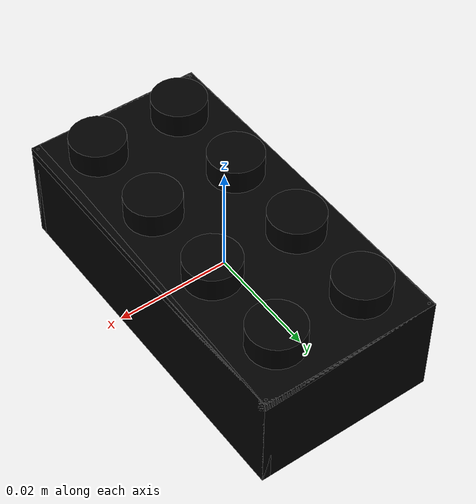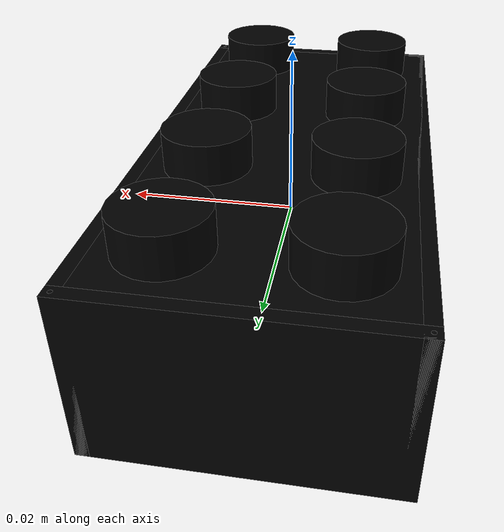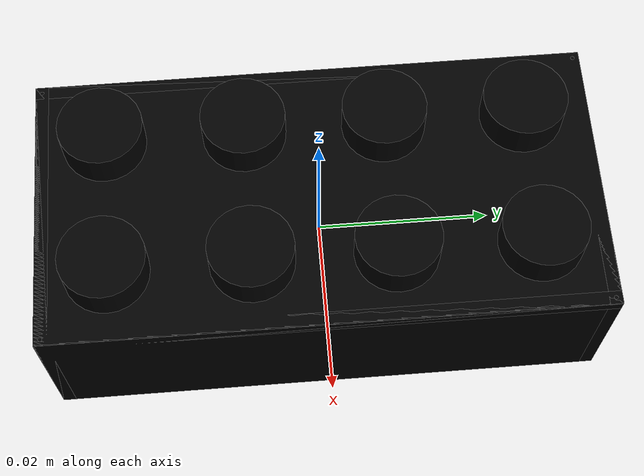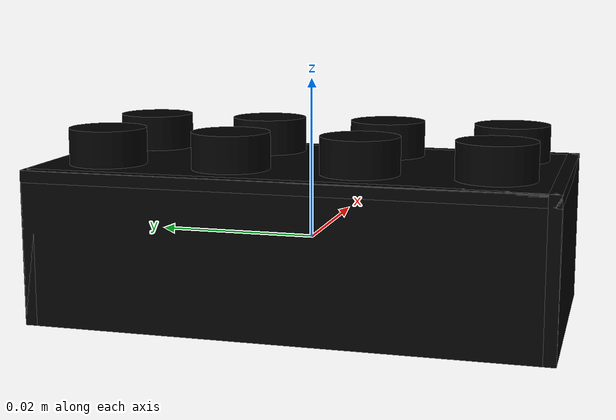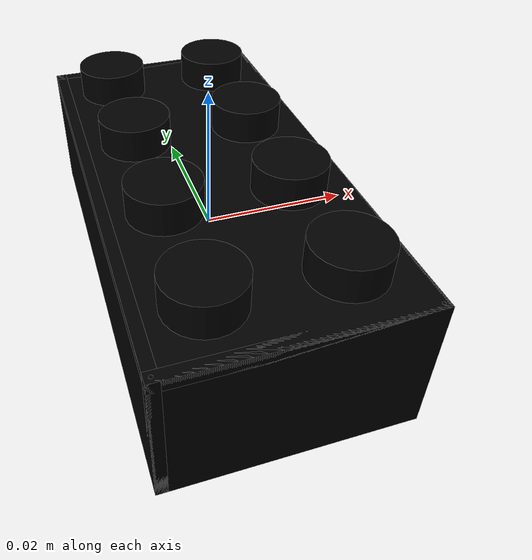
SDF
<?xml version="1.0"?>
<sdf version="1.7">
  <model name="block">
    <link name="block">

      <visual name="left_visual">
        <pose>0.0 0.03125 0.0 0 0 0</pose>
        <geometry>
          <box>
            <size>0.032 0.0015 0.0192</size>
          </box>
        </geometry>
        <material>
          <diffuse>0.0 0.0 0.0 1.0</diffuse>
        </material>
      </visual>
      <collision name="left_collision">
        <pose>0.0 0.03125 0.0 0 0 0</pose>
        <geometry>
          <box>
            <size>0.032 0.0015 0.0192</size>
          </box>
        </geometry>
          <drake:proximity_properties>
              <drake:rigid_hydroelastic/>
              <drake:mesh_resolution_hint>0.5</drake:mesh_resolution_hint>
          </drake:proximity_properties>
      </collision>

      <visual name="right_visual">
        <pose>0.0 -0.03125 0.0 0 0 0</pose>
        <geometry>
          <box>
            <size>0.032 0.0015 0.0192</size>
          </box>
        </geometry>
        <material>
          <diffuse>0.0 0.0 0.0 1.0</diffuse>
        </material>
      </visual>
      <collision name="right_collision">
        <pose>0.0 -0.03125 0.0 0 0 0</pose>
        <geometry>
          <box>
            <size>0.032 0.0015 0.0192</size>
          </box>
        </geometry>
          <drake:proximity_properties>
              <drake:rigid_hydroelastic/>
              <drake:mesh_resolution_hint>0.5</drake:mesh_resolution_hint>
          </drake:proximity_properties>
      </collision>

      <visual name="front_visual">
        <pose>0.01525 0.0 0.0 0 0 0</pose>
        <geometry>
          <box>
            <size>0.0015 0.064 0.0192</size>
          </box>
        </geometry>
        <material>
          <diffuse>0.0 0.0 0.0 1.0</diffuse>
        </material>
      </visual>
      <collision name="front_collision">
        <pose>0.01525 0.0 0.0 0 0 0</pose>
        <geometry>
          <box>
            <size>0.0015 0.064 0.0192</size>
          </box>
        </geometry>
          <drake:proximity_properties>
              <drake:rigid_hydroelastic/>
              <drake:mesh_resolution_hint>0.5</drake:mesh_resolution_hint>
          </drake:proximity_properties>
      </collision>

      <visual name="back_visual">
        <pose>-0.01525 0.0 0.0 0 0 0</pose>
        <geometry>
          <box>
            <size>0.0015 0.064 0.0192</size>
          </box>
        </geometry>
        <material>
          <diffuse>0.0 0.0 0.0 1.0</diffuse>
        </material>
      </visual>
      <collision name="back_collision">
        <pose>-0.01525 0.0 0.0 0 0 0</pose>
        <geometry>
          <box>
            <size>0.0015 0.064 0.0192</size>
          </box>
        </geometry>
          <drake:proximity_properties>
              <drake:rigid_hydroelastic/>
              <drake:mesh_resolution_hint>0.5</drake:mesh_resolution_hint>
          </drake:proximity_properties>
      </collision>

      <visual name="top_visual">
        <pose>0.0 0.0 0.008849999999999998 0 0 0</pose>
        <geometry>
          <box>
            <size>0.032 0.064 0.0015</size>
          </box>
        </geometry>
        <material>
          <diffuse>0.0 0.0 0.0 1.0</diffuse>
        </material>
      </visual>
      <collision name="top_collision">
        <pose>0.0 0.0 0.008849999999999998 0 0 0</pose>
        <geometry>
          <box>
            <size>0.032 0.064 0.0015</size>
          </box>
        </geometry>
          <drake:proximity_properties>
              <drake:rigid_hydroelastic/>
              <drake:mesh_resolution_hint>0.5</drake:mesh_resolution_hint>
          </drake:proximity_properties>
      </collision>

      <visual name="stud_1_1_visual">
        <pose>-0.008 -0.024 0.01185 0 0 0</pose>
        <geometry>
          <cylinder>
            <radius>0.0048</radius>
            <length>0.0045</length>
          </cylinder>
        </geometry>
        <material>
          <diffuse>0.0 0.0 0.0 1.0</diffuse>
        </material>
      </visual>
      <collision name="stud_1_1_collision">
        <pose>-0.008 -0.024 0.01185 0 0 0</pose>
        <geometry>
          <cylinder>
            <radius>0.0048</radius>
            <length>0.0045</length>
          </cylinder>
        </geometry>
          <drake:proximity_properties>
              <drake:rigid_hydroelastic/>
              <drake:mesh_resolution_hint>0.5</drake:mesh_resolution_hint>
          </drake:proximity_properties>
      </collision>

      <visual name="stud_1_2_visual">
        <pose>-0.008 -0.008 0.01185 0 0 0</pose>
        <geometry>
          <cylinder>
            <radius>0.0048</radius>
            <length>0.0045</length>
          </cylinder>
        </geometry>
        <material>
          <diffuse>0.0 0.0 0.0 1.0</diffuse>
        </material>
      </visual>
      <collision name="stud_1_2_collision">
        <pose>-0.008 -0.008 0.01185 0 0 0</pose>
        <geometry>
          <cylinder>
            <radius>0.0048</radius>
            <length>0.0045</length>
          </cylinder>
        </geometry>
          <drake:proximity_properties>
              <drake:rigid_hydroelastic/>
              <drake:mesh_resolution_hint>0.5</drake:mesh_resolution_hint>
          </drake:proximity_properties>
      </collision>

      <visual name="stud_1_3_visual">
        <pose>-0.008 0.008 0.01185 0 0 0</pose>
        <geometry>
          <cylinder>
            <radius>0.0048</radius>
            <length>0.0045</length>
          </cylinder>
        </geometry>
        <material>
          <diffuse>0.0 0.0 0.0 1.0</diffuse>
        </material>
      </visual>
      <collision name="stud_1_3_collision">
        <pose>-0.008 0.008 0.01185 0 0 0</pose>
        <geometry>
          <cylinder>
            <radius>0.0048</radius>
            <length>0.0045</length>
          </cylinder>
        </geometry>
          <drake:proximity_properties>
              <drake:rigid_hydroelastic/>
              <drake:mesh_resolution_hint>0.5</drake:mesh_resolution_hint>
          </drake:proximity_properties>
      </collision>

      <visual name="stud_1_4_visual">
        <pose>-0.008 0.024 0.01185 0 0 0</pose>
        <geometry>
          <cylinder>
            <radius>0.0048</radius>
            <length>0.0045</length>
          </cylinder>
        </geometry>
        <material>
          <diffuse>0.0 0.0 0.0 1.0</diffuse>
        </material>
      </visual>
      <collision name="stud_1_4_collision">
        <pose>-0.008 0.024 0.01185 0 0 0</pose>
        <geometry>
          <cylinder>
            <radius>0.0048</radius>
            <length>0.0045</length>
          </cylinder>
        </geometry>
          <drake:proximity_properties>
              <drake:rigid_hydroelastic/>
              <drake:mesh_resolution_hint>0.5</drake:mesh_resolution_hint>
          </drake:proximity_properties>
      </collision>

      <visual name="stud_2_1_visual">
        <pose>0.008 -0.024 0.01185 0 0 0</pose>
        <geometry>
          <cylinder>
            <radius>0.0048</radius>
            <length>0.0045</length>
          </cylinder>
        </geometry>
        <material>
          <diffuse>0.0 0.0 0.0 1.0</diffuse>
        </material>
      </visual>
      <collision name="stud_2_1_collision">
        <pose>0.008 -0.024 0.01185 0 0 0</pose>
        <geometry>
          <cylinder>
            <radius>0.0048</radius>
            <length>0.0045</length>
          </cylinder>
        </geometry>
          <drake:proximity_properties>
              <drake:rigid_hydroelastic/>
              <drake:mesh_resolution_hint>0.5</drake:mesh_resolution_hint>
          </drake:proximity_properties>
      </collision>

      <visual name="stud_2_2_visual">
        <pose>0.008 -0.008 0.01185 0 0 0</pose>
        <geometry>
          <cylinder>
            <radius>0.0048</radius>
            <length>0.0045</length>
          </cylinder>
        </geometry>
        <material>
          <diffuse>0.0 0.0 0.0 1.0</diffuse>
        </material>
      </visual>
      <collision name="stud_2_2_collision">
        <pose>0.008 -0.008 0.01185 0 0 0</pose>
        <geometry>
          <cylinder>
            <radius>0.0048</radius>
            <length>0.0045</length>
          </cylinder>
        </geometry>
          <drake:proximity_properties>
              <drake:rigid_hydroelastic/>
              <drake:mesh_resolution_hint>0.5</drake:mesh_resolution_hint>
          </drake:proximity_properties>
      </collision>

      <visual name="stud_2_3_visual">
        <pose>0.008 0.008 0.01185 0 0 0</pose>
        <geometry>
          <cylinder>
            <radius>0.0048</radius>
            <length>0.0045</length>
          </cylinder>
        </geometry>
        <material>
          <diffuse>0.0 0.0 0.0 1.0</diffuse>
        </material>
      </visual>
      <collision name="stud_2_3_collision">
        <pose>0.008 0.008 0.01185 0 0 0</pose>
        <geometry>
          <cylinder>
            <radius>0.0048</radius>
            <length>0.0045</length>
          </cylinder>
        </geometry>
          <drake:proximity_properties>
              <drake:rigid_hydroelastic/>
              <drake:mesh_resolution_hint>0.5</drake:mesh_resolution_hint>
          </drake:proximity_properties>
      </collision>

      <visual name="stud_2_4_visual">
        <pose>0.008 0.024 0.01185 0 0 0</pose>
        <geometry>
          <cylinder>
            <radius>0.0048</radius>
            <length>0.0045</length>
          </cylinder>
        </geometry>
        <material>
          <diffuse>0.0 0.0 0.0 1.0</diffuse>
        </material>
      </visual>
      <collision name="stud_2_4_collision">
        <pose>0.008 0.024 0.01185 0 0 0</pose>
        <geometry>
          <cylinder>
            <radius>0.0048</radius>
            <length>0.0045</length>
          </cylinder>
        </geometry>
          <drake:proximity_properties>
              <drake:rigid_hydroelastic/>
              <drake:mesh_resolution_hint>0.5</drake:mesh_resolution_hint>
          </drake:proximity_properties>
      </collision>

      <visual name="tube_1_1_visual">
        <pose>0.0 -0.016 0.0 0 0 0</pose>
        <geometry>
          <cylinder>
            <radius>0.006625</radius>
            <length>0.0167</length>
          </cylinder>
        </geometry>
        <material>
          <diffuse>0.0 0.0 0.0 1.0</diffuse>
        </material>
      </visual>
      <collision name="tube_1_1_collision">
        <pose>0.0 -0.016 0.0 0 0 0</pose>
        <geometry>
          <cylinder>
            <radius>0.006625</radius>
            <length>0.0167</length>
          </cylinder>
        </geometry>
          <drake:proximity_properties>
              <drake:rigid_hydroelastic/>
              <drake:mesh_resolution_hint>0.5</drake:mesh_resolution_hint>
          </drake:proximity_properties>
      </collision>

      <visual name="tube_1_1_sphere_1_visual">
        <pose>0.004578516408182896 -0.011421483591817105 -0.00805 0 0 0</pose>
        <geometry>
          <sphere>
            <radius>0.00030000000000000003</radius>
          </sphere>
        </geometry>
        <material>
          <diffuse>0.0 0.0 0.0 1.0</diffuse>
        </material>
      </visual>
      <collision name="tube_1_1_sphere_1_collision">
        <pose>0.004578516408182896 -0.011421483591817105 -0.00805 0 0 0</pose>
        <geometry>
          <sphere>
            <radius>0.00030000000000000003</radius>
          </sphere>
        </geometry>
      </collision>

      <visual name="tube_1_1_sphere_2_visual">
        <pose>-0.004578516408182895 -0.011421483591817105 -0.00805 0 0 0</pose>
        <geometry>
          <sphere>
            <radius>0.00030000000000000003</radius>
          </sphere>
        </geometry>
        <material>
          <diffuse>0.0 0.0 0.0 1.0</diffuse>
        </material>
      </visual>
      <collision name="tube_1_1_sphere_2_collision">
        <pose>-0.004578516408182895 -0.011421483591817105 -0.00805 0 0 0</pose>
        <geometry>
          <sphere>
            <radius>0.00030000000000000003</radius>
          </sphere>
        </geometry>
      </collision>

      <visual name="tube_1_1_sphere_3_visual">
        <pose>-0.004578516408182896 -0.020578516408182895 -0.00805 0 0 0</pose>
        <geometry>
          <sphere>
            <radius>0.00030000000000000003</radius>
          </sphere>
        </geometry>
        <material>
          <diffuse>0.0 0.0 0.0 1.0</diffuse>
        </material>
      </visual>
      <collision name="tube_1_1_sphere_3_collision">
        <pose>-0.004578516408182896 -0.020578516408182895 -0.00805 0 0 0</pose>
        <geometry>
          <sphere>
            <radius>0.00030000000000000003</radius>
          </sphere>
        </geometry>
      </collision>

      <visual name="tube_1_1_sphere_4_visual">
        <pose>0.004578516408182894 -0.020578516408182895 -0.00805 0 0 0</pose>
        <geometry>
          <sphere>
            <radius>0.00030000000000000003</radius>
          </sphere>
        </geometry>
        <material>
          <diffuse>0.0 0.0 0.0 1.0</diffuse>
        </material>
      </visual>
      <collision name="tube_1_1_sphere_4_collision">
        <pose>0.004578516408182894 -0.020578516408182895 -0.00805 0 0 0</pose>
        <geometry>
          <sphere>
            <radius>0.00030000000000000003</radius>
          </sphere>
        </geometry>
      </collision>

      <visual name="tube_1_2_visual">
        <pose>0.0 0.0 0.0 0 0 0</pose>
        <geometry>
          <cylinder>
            <radius>0.006625</radius>
            <length>0.0167</length>
          </cylinder>
        </geometry>
        <material>
          <diffuse>0.0 0.0 0.0 1.0</diffuse>
        </material>
      </visual>
      <collision name="tube_1_2_collision">
        <pose>0.0 0.0 0.0 0 0 0</pose>
        <geometry>
          <cylinder>
            <radius>0.006625</radius>
            <length>0.0167</length>
          </cylinder>
        </geometry>
          <drake:proximity_properties>
              <drake:rigid_hydroelastic/>
              <drake:mesh_resolution_hint>0.5</drake:mesh_resolution_hint>
          </drake:proximity_properties>
      </collision>

      <visual name="tube_1_2_sphere_1_visual">
        <pose>0.004578516408182896 0.004578516408182895 -0.00805 0 0 0</pose>
        <geometry>
          <sphere>
            <radius>0.00030000000000000003</radius>
          </sphere>
        </geometry>
        <material>
          <diffuse>0.0 0.0 0.0 1.0</diffuse>
        </material>
      </visual>
      <collision name="tube_1_2_sphere_1_collision">
        <pose>0.004578516408182896 0.004578516408182895 -0.00805 0 0 0</pose>
        <geometry>
          <sphere>
            <radius>0.00030000000000000003</radius>
          </sphere>
        </geometry>
      </collision>

      <visual name="tube_1_2_sphere_2_visual">
        <pose>-0.004578516408182895 0.004578516408182896 -0.00805 0 0 0</pose>
        <geometry>
          <sphere>
            <radius>0.00030000000000000003</radius>
          </sphere>
        </geometry>
        <material>
          <diffuse>0.0 0.0 0.0 1.0</diffuse>
        </material>
      </visual>
      <collision name="tube_1_2_sphere_2_collision">
        <pose>-0.004578516408182895 0.004578516408182896 -0.00805 0 0 0</pose>
        <geometry>
          <sphere>
            <radius>0.00030000000000000003</radius>
          </sphere>
        </geometry>
      </collision>

      <visual name="tube_1_2_sphere_3_visual">
        <pose>-0.004578516408182896 -0.004578516408182895 -0.00805 0 0 0</pose>
        <geometry>
          <sphere>
            <radius>0.00030000000000000003</radius>
          </sphere>
        </geometry>
        <material>
          <diffuse>0.0 0.0 0.0 1.0</diffuse>
        </material>
      </visual>
      <collision name="tube_1_2_sphere_3_collision">
        <pose>-0.004578516408182896 -0.004578516408182895 -0.00805 0 0 0</pose>
        <geometry>
          <sphere>
            <radius>0.00030000000000000003</radius>
          </sphere>
        </geometry>
      </collision>

      <visual name="tube_1_2_sphere_4_visual">
        <pose>0.004578516408182894 -0.004578516408182896 -0.00805 0 0 0</pose>
        <geometry>
          <sphere>
            <radius>0.00030000000000000003</radius>
          </sphere>
        </geometry>
        <material>
          <diffuse>0.0 0.0 0.0 1.0</diffuse>
        </material>
      </visual>
      <collision name="tube_1_2_sphere_4_collision">
        <pose>0.004578516408182894 -0.004578516408182896 -0.00805 0 0 0</pose>
        <geometry>
          <sphere>
            <radius>0.00030000000000000003</radius>
          </sphere>
        </geometry>
      </collision>

      <visual name="tube_1_3_visual">
        <pose>0.0 0.016 0.0 0 0 0</pose>
        <geometry>
          <cylinder>
            <radius>0.006625</radius>
            <length>0.0167</length>
          </cylinder>
        </geometry>
        <material>
          <diffuse>0.0 0.0 0.0 1.0</diffuse>
        </material>
      </visual>
      <collision name="tube_1_3_collision">
        <pose>0.0 0.016 0.0 0 0 0</pose>
        <geometry>
          <cylinder>
            <radius>0.006625</radius>
            <length>0.0167</length>
          </cylinder>
        </geometry>
          <drake:proximity_properties>
              <drake:rigid_hydroelastic/>
              <drake:mesh_resolution_hint>0.5</drake:mesh_resolution_hint>
          </drake:proximity_properties>
      </collision>

      <visual name="tube_1_3_sphere_1_visual">
        <pose>0.004578516408182896 0.020578516408182895 -0.00805 0 0 0</pose>
        <geometry>
          <sphere>
            <radius>0.00030000000000000003</radius>
          </sphere>
        </geometry>
        <material>
          <diffuse>0.0 0.0 0.0 1.0</diffuse>
        </material>
      </visual>
      <collision name="tube_1_3_sphere_1_collision">
        <pose>0.004578516408182896 0.020578516408182895 -0.00805 0 0 0</pose>
        <geometry>
          <sphere>
            <radius>0.00030000000000000003</radius>
          </sphere>
        </geometry>
      </collision>

      <visual name="tube_1_3_sphere_2_visual">
        <pose>-0.004578516408182895 0.020578516408182895 -0.00805 0 0 0</pose>
        <geometry>
          <sphere>
            <radius>0.00030000000000000003</radius>
          </sphere>
        </geometry>
        <material>
          <diffuse>0.0 0.0 0.0 1.0</diffuse>
        </material>
      </visual>
      <collision name="tube_1_3_sphere_2_collision">
        <pose>-0.004578516408182895 0.020578516408182895 -0.00805 0 0 0</pose>
        <geometry>
          <sphere>
            <radius>0.00030000000000000003</radius>
          </sphere>
        </geometry>
      </collision>

      <visual name="tube_1_3_sphere_3_visual">
        <pose>-0.004578516408182896 0.011421483591817105 -0.00805 0 0 0</pose>
        <geometry>
          <sphere>
            <radius>0.00030000000000000003</radius>
          </sphere>
        </geometry>
        <material>
          <diffuse>0.0 0.0 0.0 1.0</diffuse>
        </material>
      </visual>
      <collision name="tube_1_3_sphere_3_collision">
        <pose>-0.004578516408182896 0.011421483591817105 -0.00805 0 0 0</pose>
        <geometry>
          <sphere>
            <radius>0.00030000000000000003</radius>
          </sphere>
        </geometry>
      </collision>

      <visual name="tube_1_3_sphere_4_visual">
        <pose>0.004578516408182894 0.011421483591817105 -0.00805 0 0 0</pose>
        <geometry>
          <sphere>
            <radius>0.00030000000000000003</radius>
          </sphere>
        </geometry>
        <material>
          <diffuse>0.0 0.0 0.0 1.0</diffuse>
        </material>
      </visual>
      <collision name="tube_1_3_sphere_4_collision">
        <pose>0.004578516408182894 0.011421483591817105 -0.00805 0 0 0</pose>
        <geometry>
          <sphere>
            <radius>0.00030000000000000003</radius>
          </sphere>
        </geometry>
      </collision>

      <visual name="front_left_bottom_visual">
        <pose>0.01525 0.03125 -0.008887499999999998 0 0 0</pose>
        <geometry>
          <sphere>
            <radius>0.00075</radius>
          </sphere>
        </geometry>
        <material>
          <diffuse>0.0 0.0 0.0 1.0</diffuse>
        </material>
      </visual>
      <collision name="front_left_bottom_collision">
        <pose>0.01525 0.03125 -0.008887499999999998 0 0 0</pose>
        <geometry>
          <sphere>
            <radius>0.00075</radius>
          </sphere>
        </geometry>
      </collision>

      <visual name="front_right_bottom_visual">
        <pose>0.01525 -0.03125 -0.008887499999999998 0 0 0</pose>
        <geometry>
          <sphere>
            <radius>0.00075</radius>
          </sphere>
        </geometry>
        <material>
          <diffuse>0.0 0.0 0.0 1.0</diffuse>
        </material>
      </visual>
      <collision name="front_right_bottom_collision">
        <pose>0.01525 -0.03125 -0.008887499999999998 0 0 0</pose>
        <geometry>
          <sphere>
            <radius>0.00075</radius>
          </sphere>
        </geometry>
      </collision>

      <visual name="back_left_bottom_visual">
        <pose>-0.01525 0.03125 -0.008887499999999998 0 0 0</pose>
        <geometry>
          <sphere>
            <radius>0.00075</radius>
          </sphere>
        </geometry>
        <material>
          <diffuse>0.0 0.0 0.0 1.0</diffuse>
        </material>
      </visual>
      <collision name="back_left_bottom_collision">
        <pose>-0.01525 0.03125 -0.008887499999999998 0 0 0</pose>
        <geometry>
          <sphere>
            <radius>0.00075</radius>
          </sphere>
        </geometry>
      </collision>

      <visual name="back_right_bottom_visual">
        <pose>-0.01525 -0.03125 -0.008887499999999998 0 0 0</pose>
        <geometry>
          <sphere>
            <radius>0.00075</radius>
          </sphere>
        </geometry>
        <material>
          <diffuse>0.0 0.0 0.0 1.0</diffuse>
        </material>
      </visual>
      <collision name="back_right_bottom_collision">
        <pose>-0.01525 -0.03125 -0.008887499999999998 0 0 0</pose>
        <geometry>
          <sphere>
            <radius>0.00075</radius>
          </sphere>
        </geometry>
      </collision>

      <visual name="front_left_top_visual">
        <pose>0.01525 0.03125 0.008887499999999998 0 0 0</pose>
        <geometry>
          <sphere>
            <radius>0.00075</radius>
          </sphere>
        </geometry>
        <material>
          <diffuse>0.0 0.0 0.0 1.0</diffuse>
        </material>
      </visual>
      <collision name="front_left_top_collision">
        <pose>0.01525 0.03125 0.008887499999999998 0 0 0</pose>
        <geometry>
          <sphere>
            <radius>0.00075</radius>
          </sphere>
        </geometry>
      </collision>

      <visual name="front_right_top_visual">
        <pose>0.01525 -0.03125 0.008887499999999998 0 0 0</pose>
        <geometry>
          <sphere>
            <radius>0.00075</radius>
          </sphere>
        </geometry>
        <material>
          <diffuse>0.0 0.0 0.0 1.0</diffuse>
        </material>
      </visual>
      <collision name="front_right_top_collision">
        <pose>0.01525 -0.03125 0.008887499999999998 0 0 0</pose>
        <geometry>
          <sphere>
            <radius>0.00075</radius>
          </sphere>
        </geometry>
      </collision>

      <visual name="back_left_top_visual">
        <pose>-0.01525 0.03125 0.008887499999999998 0 0 0</pose>
        <geometry>
          <sphere>
            <radius>0.00075</radius>
          </sphere>
        </geometry>
        <material>
          <diffuse>0.0 0.0 0.0 1.0</diffuse>
        </material>
      </visual>
      <collision name="back_left_top_collision">
        <pose>-0.01525 0.03125 0.008887499999999998 0 0 0</pose>
        <geometry>
          <sphere>
            <radius>0.00075</radius>
          </sphere>
        </geometry>
      </collision>

      <visual name="back_right_top_visual">
        <pose>-0.01525 -0.03125 0.008887499999999998 0 0 0</pose>
        <geometry>
          <sphere>
            <radius>0.00075</radius>
          </sphere>
        </geometry>
        <material>
          <diffuse>0.0 0.0 0.0 1.0</diffuse>
        </material>
      </visual>
      <collision name="back_right_top_collision">
        <pose>-0.01525 -0.03125 0.008887499999999998 0 0 0</pose>
        <geometry>
          <sphere>
            <radius>0.00075</radius>
          </sphere>
        </geometry>
      </collision>

      <inertial>
        <pose>0 0 0 0 0 0</pose>
        <mass>0.012</mass>
        <inertia>
          <ixx>4.46464e-06</ixx>
          <ixy>0</ixy>
          <ixz>0</ixz>
          <iyy>1.3926399999999998e-06</iyy>
          <iyz>0</iyz>
          <izz>5.119999999999999e-06</izz>
        </inertia>
      </inertial>

    </link>
  </model>
</sdf>
